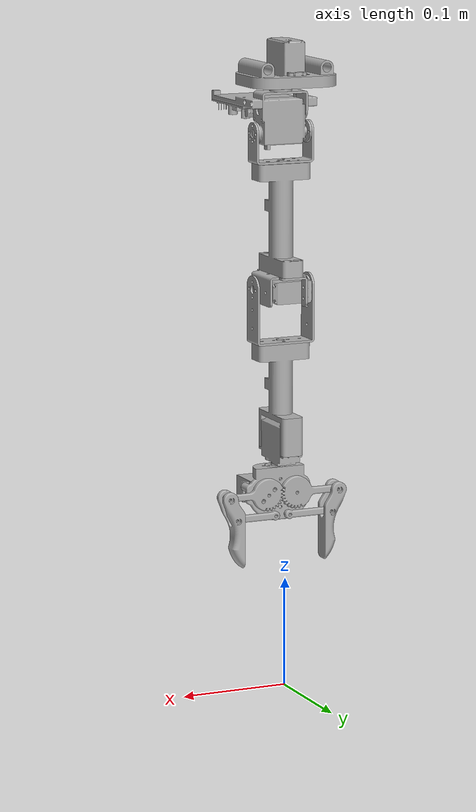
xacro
<?xml version="1.0"?>
<!-- assarm - URDF/xacro for ROS 2 Humble + Gazebo Harmonic (gz-sim) -->
<robot name="assarm" xmlns:xacro="http://www.ros.org/wiki/xacro">

<!-- ===== Tham so co the chinh ===== -->
<!-- Effort theo datasheet servo that (N.m) -->
<xacro:property name="effort_j1"      value="1.8"/>    <!-- TD8120MG (1.81-2.23 N.m) -->
<xacro:property name="effort_j2"      value="1.45"/>   <!-- RDS3120  (1.47-2.06 N.m) -->
<xacro:property name="effort_j3"      value="0.9"/>    <!-- MG995   (0.92-1.27 N.m) -->
<xacro:property name="effort_j4"      value="0.9"/>    <!-- MG995   (0.92-1.27 N.m) -->
<xacro:property name="gripper_effort" value="0.9"/>    <!-- MG995   (0.92-1.27 N.m) -->
<xacro:property name="joint_velocity" value="3.0"/>   <!-- rad/s -->
<xacro:property name="joint_damping"  value="0.1"/>
<xacro:property name="joint_friction" value="0.01"/>
<xacro:property name="base_z"    value="0.0"/>
<xacro:property name="base_roll" value="0.0"/>

<xacro:include filename="$(find assarm_description)/urdf/materials.xacro"/>
<xacro:include filename="$(find assarm_description)/urdf/assarm_ros2_control.xacro"/>
<xacro:include filename="$(find assarm_description)/urdf/assarm.gazebo"/>

<link name="world"/>
<joint name="world_to_base_joint" type="fixed">
  <parent link="world"/>
  <child link="base_link"/>
  <origin xyz="0 0 ${base_z}" rpy="${base_roll} 0 0"/>
</joint>

<link name="base_link">
  <inertial>
    <origin xyz="0 0 0.556779" rpy="0 0 0"/>
    <mass value="0.024005518761463195"/>
    <inertia ixx="1e-05" iyy="1.6e-05" izz="2.5e-05" ixy="0.0" iyz="0.0" ixz="-0.0"/>
  </inertial>
  <visual>
    <origin xyz="0 0 0" rpy="0 0 0"/>
    <geometry>
      <mesh filename="package://assarm_description/meshes/base_link.stl" scale="0.001 0.001 0.001"/>
    </geometry>
    <material name="silver"/>
  </visual>
  <collision>
    <origin xyz="0 0 0" rpy="0 0 0"/>
    <geometry>
      <mesh filename="package://assarm_description/meshes/base_link.stl" scale="0.001 0.001 0.001"/>
    </geometry>
  </collision>
</link>

<link name="Servo1_1">
  <inertial>
    <origin xyz="-0.0039 -0.024164 0.010047" rpy="0 0 0"/>
    <mass value="0.06403257509717535"/>
    <inertia ixx="1.7e-05" iyy="1e-05" izz="1.1e-05" ixy="0.0" iyz="-0.0" ixz="0.0"/>
  </inertial>
  <visual>
    <origin xyz="-0.003894 -0.02389 -0.56" rpy="0 0 0"/>
    <geometry>
      <mesh filename="package://assarm_description/meshes/Servo1_1.stl" scale="0.001 0.001 0.001"/>
    </geometry>
    <material name="silver"/>
  </visual>
  <collision>
    <origin xyz="-0.003894 -0.02389 -0.56" rpy="0 0 0"/>
    <geometry>
      <mesh filename="package://assarm_description/meshes/Servo1_1.stl" scale="0.001 0.001 0.001"/>
    </geometry>
  </collision>
</link>

<link name="Servo1_Pinion_Gear_1">
  <inertial>
    <origin xyz="0 0 -0.035921" rpy="0 0 0"/>
    <mass value="0.003"/>
    <inertia ixx="7.07e-08" iyy="7.07e-08" izz="1.36e-07" ixy="0.0" iyz="0.0" ixz="0.0"/>
  </inertial>
  <visual>
    <origin xyz="0.000006 0.010797 -0.580797" rpy="0 0 0"/>
    <geometry>
      <mesh filename="package://assarm_description/meshes/Servo1_Pinion_Gear_1.stl" scale="0.001 0.001 0.001"/>
    </geometry>
    <material name="silver"/>
  </visual>
  <collision>
    <origin xyz="0.000006 0.010797 -0.580797" rpy="0 0 0"/>
    <geometry>
      <mesh filename="package://assarm_description/meshes/Servo1_Pinion_Gear_1.stl" scale="0.001 0.001 0.001"/>
    </geometry>
  </collision>
</link>

<link name="Servo2_1">
  <inertial>
    <origin xyz="0.000473 -0.000041 -0.02579" rpy="0 0 0"/>
    <mass value="0.0800662347147613"/>
    <inertia ixx="1.5e-05" iyy="2.6e-05" izz="1.6e-05" ixy="-0.0" iyz="-0.0" ixz="0.0"/>
  </inertial>
  <visual>
    <origin xyz="0.000006 0.010797 -0.54355" rpy="0 0 0"/>
    <geometry>
      <mesh filename="package://assarm_description/meshes/Servo2_1.stl" scale="0.001 0.001 0.001"/>
    </geometry>
    <material name="silver"/>
  </visual>
  <collision>
    <origin xyz="0.000006 0.010797 -0.54355" rpy="0 0 0"/>
    <geometry>
      <mesh filename="package://assarm_description/meshes/Servo2_1.stl" scale="0.001 0.001 0.001"/>
    </geometry>
  </collision>
</link>

<link name="Servo2_BracketU_1">
  <inertial>
    <origin xyz="0.0258 0 -0.017356" rpy="0 0 0"/>
    <mass value="0.011032559217128033"/>
    <inertia ixx="2e-06" iyy="7e-06" izz="6e-06" ixy="0.0" iyz="-0.0" ixz="-0.0"/>
  </inertial>
  <visual>
    <origin xyz="0.026206 0.010797 -0.50653" rpy="0 0 0"/>
    <geometry>
      <mesh filename="package://assarm_description/meshes/Servo2_BracketU_1.stl" scale="0.001 0.001 0.001"/>
    </geometry>
    <material name="silver"/>
  </visual>
  <collision>
    <origin xyz="0.026206 0.010797 -0.50653" rpy="0 0 0"/>
    <geometry>
      <mesh filename="package://assarm_description/meshes/Servo2_BracketU_1.stl" scale="0.001 0.001 0.001"/>
    </geometry>
  </collision>
</link>

<link name="PCB_Box_1">
  <inertial>
    <origin xyz="-0.022374 -0.028321 -0.001439" rpy="0 0 0"/>
    <mass value="0.013008493921349134"/>
    <inertia ixx="9e-06" iyy="7e-06" izz="1.5e-05" ixy="0.0" iyz="-0.0" ixz="0.0"/>
  </inertial>
  <visual>
    <origin xyz="-0.022094 0.018222 -0.533975" rpy="0 0 0"/>
    <geometry>
      <mesh filename="package://assarm_description/meshes/PCB_Box_1.stl" scale="0.001 0.001 0.001"/>
    </geometry>
    <material name="silver"/>
  </visual>
  <collision>
    <origin xyz="-0.022094 0.018222 -0.533975" rpy="0 0 0"/>
    <geometry>
      <mesh filename="package://assarm_description/meshes/PCB_Box_1.stl" scale="0.001 0.001 0.001"/>
    </geometry>
  </collision>
</link>

<link name="PCB_1">
  <inertial>
    <origin xyz="0.029049 -0.028319 -0.002938" rpy="0 0 0"/>
    <mass value="0.03142086957249495"/>
    <inertia ixx="1.2e-05" iyy="1.1e-05" izz="2.2e-05" ixy="-0.0" iyz="0.0" ixz="0.0"/>
  </inertial>
  <visual>
    <origin xyz="0.028839 0.026298 -0.529325" rpy="0 0 0"/>
    <geometry>
      <mesh filename="package://assarm_description/meshes/PCB_1.stl" scale="0.001 0.001 0.001"/>
    </geometry>
    <material name="silver"/>
  </visual>
  <collision>
    <origin xyz="0.028839 0.026298 -0.529325" rpy="0 0 0"/>
    <geometry>
      <mesh filename="package://assarm_description/meshes/PCB_1.stl" scale="0.001 0.001 0.001"/>
    </geometry>
  </collision>
</link>

<link name="Link1_1">
  <inertial>
    <origin xyz="0 -0.000076 -0.049575" rpy="0 0 0"/>
    <mass value="0.024002440604215008"/>
    <inertia ixx="3e-05" iyy="3e-05" izz="4e-06" ixy="0.0" iyz="0.0" ixz="-0.0"/>
  </inertial>
  <visual>
    <origin xyz="0.000406 0.010797 -0.47953" rpy="0 0 0"/>
    <geometry>
      <mesh filename="package://assarm_description/meshes/Link1_1.stl" scale="0.001 0.001 0.001"/>
    </geometry>
    <material name="silver"/>
  </visual>
  <collision>
    <origin xyz="0.000406 0.010797 -0.47953" rpy="0 0 0"/>
    <geometry>
      <mesh filename="package://assarm_description/meshes/Link1_1.stl" scale="0.001 0.001 0.001"/>
    </geometry>
  </collision>
</link>

<link name="Servo3_BracketM_1">
  <inertial>
    <origin xyz="0.010182 -0.024982 -0.007355" rpy="0 0 0"/>
    <mass value="0.017000185456280625"/>
    <inertia ixx="6e-06" iyy="4e-06" izz="7e-06" ixy="0.0" iyz="0.0" ixz="1e-06"/>
  </inertial>
  <visual>
    <origin xyz="0.005406 -0.01419 -0.37953" rpy="0 0 0"/>
    <geometry>
      <mesh filename="package://assarm_description/meshes/Servo3_BracketM_1.stl" scale="0.001 0.001 0.001"/>
    </geometry>
    <material name="silver"/>
  </visual>
  <collision>
    <origin xyz="0.005406 -0.01419 -0.37953" rpy="0 0 0"/>
    <geometry>
      <mesh filename="package://assarm_description/meshes/Servo3_BracketM_1.stl" scale="0.001 0.001 0.001"/>
    </geometry>
  </collision>
</link>

<link name="Servo3_1">
  <inertial>
    <origin xyz="0.008485 -0.024315 -0.004982" rpy="0 0 0"/>
    <mass value="0.053059879208595145"/>
    <inertia ixx="9e-06" iyy="8e-06" izz="1.4e-05" ixy="-0.0" iyz="0.0" ixz="0.0"/>
  </inertial>
  <visual>
    <origin xyz="0.013406 -0.01344 -0.36966" rpy="0 0 0"/>
    <geometry>
      <mesh filename="package://assarm_description/meshes/Servo3_1.stl" scale="0.001 0.001 0.001"/>
    </geometry>
    <material name="silver"/>
  </visual>
  <collision>
    <origin xyz="0.013406 -0.01344 -0.36966" rpy="0 0 0"/>
    <geometry>
      <mesh filename="package://assarm_description/meshes/Servo3_1.stl" scale="0.001 0.001 0.001"/>
    </geometry>
  </collision>
</link>

<link name="Servo3_Pinion_Gear_1">
  <inertial>
    <origin xyz="-0.000674 0 0" rpy="0 0 0"/>
    <mass value="0.003"/>
    <inertia ixx="7.07e-08" iyy="7.07e-08" izz="1.36e-07" ixy="0.0" iyz="0.0" ixz="0.0"/>
  </inertial>
  <visual>
    <origin xyz="0.028906 0.02071 -0.36466" rpy="0 0 0"/>
    <geometry>
      <mesh filename="package://assarm_description/meshes/Servo3_Pinion_Gear_1.stl" scale="0.001 0.001 0.001"/>
    </geometry>
    <material name="silver"/>
  </visual>
  <collision>
    <origin xyz="0.028906 0.02071 -0.36466" rpy="0 0 0"/>
    <geometry>
      <mesh filename="package://assarm_description/meshes/Servo3_Pinion_Gear_1.stl" scale="0.001 0.001 0.001"/>
    </geometry>
  </collision>
</link>

<link name="Servo3_BracketU_1">
  <inertial>
    <origin xyz="0.026 0 -0.029125" rpy="0 0 0"/>
    <mass value="0.02300359200204669"/>
    <inertia ixx="1e-05" iyy="2.2e-05" izz="1.4e-05" ixy="-0.0" iyz="-0.0" ixz="-0.0"/>
  </inertial>
  <visual>
    <origin xyz="0.030906 0.02071 -0.36466" rpy="0 0 0"/>
    <geometry>
      <mesh filename="package://assarm_description/meshes/Servo3_BracketU_1.stl" scale="0.001 0.001 0.001"/>
    </geometry>
    <material name="silver"/>
  </visual>
  <collision>
    <origin xyz="0.030906 0.02071 -0.36466" rpy="0 0 0"/>
    <geometry>
      <mesh filename="package://assarm_description/meshes/Servo3_BracketU_1.stl" scale="0.001 0.001 0.001"/>
    </geometry>
  </collision>
</link>

<link name="Link2_1">
  <inertial>
    <origin xyz="0 0.000109 -0.04004" rpy="0 0 0"/>
    <mass value="0.024078102548611983"/>
    <inertia ixx="2.5e-05" iyy="2.3e-05" izz="6e-06" ixy="0.0" iyz="0.0" ixz="-0.0"/>
  </inertial>
  <visual>
    <origin xyz="0.004906 0.02071 -0.31466" rpy="0 0 0"/>
    <geometry>
      <mesh filename="package://assarm_description/meshes/Link2_1.stl" scale="0.001 0.001 0.001"/>
    </geometry>
    <material name="silver"/>
  </visual>
  <collision>
    <origin xyz="0.004906 0.02071 -0.31466" rpy="0 0 0"/>
    <geometry>
      <mesh filename="package://assarm_description/meshes/Link2_1.stl" scale="0.001 0.001 0.001"/>
    </geometry>
  </collision>
</link>

<link name="Servo4_1">
  <inertial>
    <origin xyz="0.004982 -0.024315 0.008485" rpy="0 0 0"/>
    <mass value="0.053059879208595145"/>
    <inertia ixx="1.4e-05" iyy="8e-06" izz="9e-06" ixy="-0.0" iyz="-0.0" ixz="-0.0"/>
  </inertial>
  <visual>
    <origin xyz="0.009906 -0.00344 -0.21466" rpy="0 0 0"/>
    <geometry>
      <mesh filename="package://assarm_description/meshes/Servo4_1.stl" scale="0.001 0.001 0.001"/>
    </geometry>
    <material name="silver"/>
  </visual>
  <collision>
    <origin xyz="0.009906 -0.00344 -0.21466" rpy="0 0 0"/>
    <geometry>
      <mesh filename="package://assarm_description/meshes/Servo4_1.stl" scale="0.001 0.001 0.001"/>
    </geometry>
  </collision>
</link>

<link name="Servo4_Pinion_Gear_1">
  <inertial>
    <origin xyz="0 0 -0.000674" rpy="0 0 0"/>
    <mass value="0.003"/>
    <inertia ixx="7.07e-08" iyy="7.07e-08" izz="1.36e-07" ixy="0.0" iyz="0.0" ixz="0.0"/>
  </inertial>
  <visual>
    <origin xyz="0.004906 0.03071 -0.19916" rpy="0 0 0"/>
    <geometry>
      <mesh filename="package://assarm_description/meshes/Servo4_Pinion_Gear_1.stl" scale="0.001 0.001 0.001"/>
    </geometry>
    <material name="silver"/>
  </visual>
  <collision>
    <origin xyz="0.004906 0.03071 -0.19916" rpy="0 0 0"/>
    <geometry>
      <mesh filename="package://assarm_description/meshes/Servo4_Pinion_Gear_1.stl" scale="0.001 0.001 0.001"/>
    </geometry>
  </collision>
</link>

<link name="Plate_1">
  <inertial>
    <origin xyz="-0.00074 0.004984 -0.017062" rpy="0 0 0"/>
    <mass value="0.011995923479278468"/>
    <inertia ixx="3e-06" iyy="6e-06" izz="4e-06" ixy="0.0" iyz="0.0" ixz="-0.0"/>
  </inertial>
  <visual>
    <origin xyz="0.004906 0.03071 -0.19716" rpy="0 0 0"/>
    <geometry>
      <mesh filename="package://assarm_description/meshes/Plate_1.stl" scale="0.001 0.001 0.001"/>
    </geometry>
    <material name="silver"/>
  </visual>
  <collision>
    <origin xyz="0.004906 0.03071 -0.19716" rpy="0 0 0"/>
    <geometry>
      <mesh filename="package://assarm_description/meshes/Plate_1.stl" scale="0.001 0.001 0.001"/>
    </geometry>
  </collision>
</link>

<link name="Servo5_1">
  <inertial>
    <origin xyz="0.025072 -0.052246 0.200142" rpy="0 0 0"/>
    <mass value="0.053059879208595145"/>
    <inertia ixx="8e-06" iyy="9e-06" izz="1.4e-05" ixy="-0.0" iyz="0.0" ixz="0.0"/>
  </inertial>
  <visual>
    <origin xyz="0.025812 -0.005 0.025" rpy="0 0 0"/>
    <geometry>
      <mesh filename="package://assarm_description/meshes/Servo5_1.stl" scale="0.001 0.001 0.001"/>
    </geometry>
    <material name="silver"/>
  </visual>
  <collision>
    <origin xyz="0.025812 -0.005 0.025" rpy="0 0 0"/>
    <geometry>
      <mesh filename="package://assarm_description/meshes/Servo5_1.stl" scale="0.001 0.001 0.001"/>
    </geometry>
  </collision>
</link>

<link name="Servo5_Pinion_Gear_1">
  <inertial>
    <origin xyz="0 0.068479 0" rpy="0 0 0"/>
    <mass value="0.003"/>
    <inertia ixx="7.07e-08" iyy="7.07e-08" izz="1.36e-07" ixy="0.0" iyz="0.0" ixz="0.0"/>
  </inertial>
  <visual>
    <origin xyz="-0.009094 0.090015 -0.17516" rpy="0 0 0"/>
    <geometry>
      <mesh filename="package://assarm_description/meshes/Servo5_Pinion_Gear_1.stl" scale="0.001 0.001 0.001"/>
    </geometry>
    <material name="silver"/>
  </visual>
  <collision>
    <origin xyz="-0.009094 0.090015 -0.17516" rpy="0 0 0"/>
    <geometry>
      <mesh filename="package://assarm_description/meshes/Servo5_Pinion_Gear_1.stl" scale="0.001 0.001 0.001"/>
    </geometry>
  </collision>
</link>

<link name="Servo_Gear_1">
  <inertial>
    <origin xyz="0.006595 0.003 0.000395" rpy="0 0 0"/>
    <mass value="0.002998793120495797"/>
    <inertia ixx="1e-06" iyy="1e-06" izz="1e-06" ixy="0.0" iyz="0.0" ixz="0.0"/>
  </inertial>
  <visual>
    <origin xyz="-0.009094 0.02021 -0.17516" rpy="0 0 0"/>
    <geometry>
      <mesh filename="package://assarm_description/meshes/Servo_Gear_1.stl" scale="0.001 0.001 0.001"/>
    </geometry>
    <material name="silver"/>
  </visual>
  <collision>
    <origin xyz="-0.009094 0.02021 -0.17516" rpy="0 0 0"/>
    <geometry>
      <mesh filename="package://assarm_description/meshes/Servo_Gear_1.stl" scale="0.001 0.001 0.001"/>
    </geometry>
  </collision>
</link>

<link name="Idol_Gear_1">
  <inertial>
    <origin xyz="-0.006453 0.003 0.000407" rpy="0 0 0"/>
    <mass value="0.0029970567767714884"/>
    <inertia ixx="1e-06" iyy="1e-06" izz="1e-06" ixy="0.0" iyz="0.0" ixz="0.0"/>
  </inertial>
  <visual>
    <origin xyz="0.018906 0.02021 -0.17516" rpy="0 0 0"/>
    <geometry>
      <mesh filename="package://assarm_description/meshes/Idol_Gear_1.stl" scale="0.001 0.001 0.001"/>
    </geometry>
    <material name="silver"/>
  </visual>
  <collision>
    <origin xyz="0.018906 0.02021 -0.17516" rpy="0 0 0"/>
    <geometry>
      <mesh filename="package://assarm_description/meshes/Idol_Gear_1.stl" scale="0.001 0.001 0.001"/>
    </geometry>
  </collision>
</link>

<link name="Gripper_Left_1">
  <inertial>
    <origin xyz="0.007006 0.003247 -0.028309" rpy="0 0 0"/>
    <mass value="0.005999452648441966"/>
    <inertia ixx="2e-06" iyy="2e-06" izz="1e-06" ixy="0.0" iyz="0.0" ixz="0.0"/>
  </inertial>
  <visual>
    <origin xyz="0.058906 0.02021 -0.17516" rpy="0 0 0"/>
    <geometry>
      <mesh filename="package://assarm_description/meshes/Gripper_Left_1.stl" scale="0.001 0.001 0.001"/>
    </geometry>
    <material name="silver"/>
  </visual>
  <collision>
    <origin xyz="0.058906 0.02021 -0.17516" rpy="0 0 0"/>
    <geometry>
      <mesh filename="package://assarm_description/meshes/Gripper_Left_1.stl" scale="0.001 0.001 0.001"/>
    </geometry>
  </collision>
</link>

<link name="Gripper_Right_1">
  <inertial>
    <origin xyz="-0.007006 0.003247 -0.028308" rpy="0 0 0"/>
    <mass value="0.005999453345727804"/>
    <inertia ixx="2e-06" iyy="2e-06" izz="1e-06" ixy="0.0" iyz="0.0" ixz="0.0"/>
  </inertial>
  <visual>
    <origin xyz="-0.049094 0.02021 -0.175159" rpy="0 0 0"/>
    <geometry>
      <mesh filename="package://assarm_description/meshes/Gripper_Right_1.stl" scale="0.001 0.001 0.001"/>
    </geometry>
    <material name="silver"/>
  </visual>
  <collision>
    <origin xyz="-0.049094 0.02021 -0.175159" rpy="0 0 0"/>
    <geometry>
      <mesh filename="package://assarm_description/meshes/Gripper_Right_1.stl" scale="0.001 0.001 0.001"/>
    </geometry>
  </collision>
</link>

<link name="Pivot_Arm_Left_1">
  <inertial>
    <origin xyz="-0.018960 0.003000 0.000075" rpy="0 0 0"/>
    <mass value="0.001963"/>
    <inertia ixx="1e-06" iyy="1e-06" izz="1e-06" ixy="0.0" iyz="0.0" ixz="0.0"/>
  </inertial>
  <visual>
    <origin xyz="0.012947 0.020210 -0.155084" rpy="0 0 0"/>
    <geometry>
      <mesh filename="package://assarm_description/meshes/Pivot_Arm_Left_1.stl" scale="0.001 0.001 0.001"/>
    </geometry>
    <material name="silver"/>
  </visual>
  <collision>
    <origin xyz="0.012947 0.020210 -0.155084" rpy="0 0 0"/>
    <geometry>
      <mesh filename="package://assarm_description/meshes/Pivot_Arm_Left_1.stl" scale="0.001 0.001 0.001"/>
    </geometry>
  </collision>
</link>

<link name="Pivot_Arm_Right_1">
  <inertial>
    <origin xyz="0.018959 0.003000 0.000076" rpy="0 0 0"/>
    <mass value="0.001963"/>
    <inertia ixx="1e-06" iyy="1e-06" izz="1e-06" ixy="0.0" iyz="0.0" ixz="0.0"/>
  </inertial>
  <visual>
    <origin xyz="-0.003135 0.020210 -0.155084" rpy="0 0 0"/>
    <geometry>
      <mesh filename="package://assarm_description/meshes/Pivot_Arm_Right_1.stl" scale="0.001 0.001 0.001"/>
    </geometry>
    <material name="silver"/>
  </visual>
  <collision>
    <origin xyz="-0.003135 0.020210 -0.155084" rpy="0 0 0"/>
    <geometry>
      <mesh filename="package://assarm_description/meshes/Pivot_Arm_Right_1.stl" scale="0.001 0.001 0.001"/>
    </geometry>
  </collision>
</link>

<joint name="Rigid_1" type="fixed">
  <origin xyz="0.003894 0.02389 0.56" rpy="0 0 0"/>
  <parent link="base_link"/>
  <child link="Servo1_1"/>
</joint>

<joint name="Revolute_Joint_1" type="revolute">
  <origin xyz="-0.0039 -0.034687 0.020797" rpy="0 0 0"/>
  <parent link="Servo1_1"/>
  <child link="Servo1_Pinion_Gear_1"/>
  <axis xyz="0.0 0.0 -1.0"/>
  <limit lower="-1.570796" upper="1.570796" effort="${effort_j1}" velocity="${joint_velocity}"/>
  <dynamics damping="${joint_damping}" friction="${joint_friction}"/>
</joint>

<joint name="Rigid_2" type="fixed">
  <origin xyz="0 0 -0.037247" rpy="0 0 0"/>
  <parent link="Servo1_Pinion_Gear_1"/>
  <child link="Servo2_1"/>
</joint>

<joint name="Revolute_Joint_2" type="revolute">
  <origin xyz="-0.0262 0 -0.03702" rpy="0 0 0"/>
  <parent link="Servo2_1"/>
  <child link="Servo2_BracketU_1"/>
  <axis xyz="-1.0 -0.0 0.0"/>
  <limit lower="-1.570796" upper="1.570796" effort="${effort_j2}" velocity="${joint_velocity}"/>
  <dynamics damping="${joint_damping}" friction="${joint_friction}"/>
</joint>

<joint name="Rigid_3" type="fixed">
  <origin xyz="0.0221 -0.007425 -0.009575" rpy="0 0 0"/>
  <parent link="Servo2_1"/>
  <child link="PCB_Box_1"/>
</joint>

<joint name="Rigid_4" type="fixed">
  <origin xyz="-0.050933 -0.008076 -0.00465" rpy="0 0 0"/>
  <parent link="PCB_Box_1"/>
  <child link="PCB_1"/>
</joint>

<joint name="Rigid_5" type="fixed">
  <origin xyz="0.0258 0 -0.027" rpy="0 0 0"/>
  <parent link="Servo2_BracketU_1"/>
  <child link="Link1_1"/>
</joint>

<joint name="Rigid_6" type="fixed">
  <origin xyz="-0.005 0.024987 -0.1" rpy="0 0 0"/>
  <parent link="Link1_1"/>
  <child link="Servo3_BracketM_1"/>
</joint>

<joint name="Rigid_7" type="fixed">
  <origin xyz="-0.008 -0.00075 -0.00987" rpy="0 0 0"/>
  <parent link="Servo3_BracketM_1"/>
  <child link="Servo3_1"/>
</joint>

<joint name="Revolute_Joint_3" type="revolute">
  <origin xyz="-0.0155 -0.03415 -0.005" rpy="0 0 0"/>
  <parent link="Servo3_1"/>
  <child link="Servo3_Pinion_Gear_1"/>
  <axis xyz="-1.0 -0.0 -0.0"/>
  <limit lower="-1.570796" upper="1.570796" effort="${effort_j3}" velocity="${joint_velocity}"/>
  <dynamics damping="${joint_damping}" friction="${joint_friction}"/>
</joint>

<joint name="Rigid_8" type="fixed">
  <origin xyz="-0.002 0 0" rpy="0 0 0"/>
  <parent link="Servo3_Pinion_Gear_1"/>
  <child link="Servo3_BracketU_1"/>
</joint>

<joint name="Rigid_9" type="fixed">
  <origin xyz="0.026 0 -0.05" rpy="0 0 0"/>
  <parent link="Servo3_BracketU_1"/>
  <child link="Link2_1"/>
</joint>

<joint name="Rigid_10" type="fixed">
  <origin xyz="-0.005 0.02415 -0.1" rpy="0 0 0"/>
  <parent link="Link2_1"/>
  <child link="Servo4_1"/>
</joint>

<joint name="Revolute_Joint_4" type="revolute">
  <origin xyz="0.005 -0.03415 -0.0155" rpy="0 0 0"/>
  <parent link="Servo4_1"/>
  <child link="Servo4_Pinion_Gear_1"/>
  <axis xyz="0.0 0.0 -1.0"/>
  <limit lower="-1.570796" upper="1.570796" effort="${effort_j4}" velocity="${joint_velocity}"/>
  <dynamics damping="${joint_damping}" friction="${joint_friction}"/>
</joint>

<joint name="Rigid_11" type="fixed">
  <origin xyz="0 0 -0.002" rpy="0 0 0"/>
  <parent link="Servo4_Pinion_Gear_1"/>
  <child link="Plate_1"/>
</joint>

<joint name="Rigid_12" type="fixed">
  <origin xyz="-0.020906 0.03571 -0.22216" rpy="0 0 0"/>
  <parent link="Plate_1"/>
  <child link="Servo5_1"/>
</joint>

<joint name="Revolute_Joint_Active" type="revolute">
  <origin xyz="0.034906 -0.095015 0.20016" rpy="0 0 0"/>
  <parent link="Servo5_1"/>
  <child link="Servo5_Pinion_Gear_1"/>
  <axis xyz="-0.0 1.0 0.0"/>
  <limit lower="0.0" upper="1.570796" effort="${gripper_effort}" velocity="${joint_velocity}"/>
  <dynamics damping="${joint_damping}" friction="${joint_friction}"/>
</joint>

<joint name="Rigid_13" type="fixed">
  <origin xyz="0 0.069805 0" rpy="0 0 0"/>
  <parent link="Servo5_Pinion_Gear_1"/>
  <child link="Servo_Gear_1"/>
</joint>

<joint name="Revolute_Joint_Passive" type="revolute">
  <origin xyz="-0.014 0.0105 -0.022" rpy="0 0 0"/>
  <parent link="Plate_1"/>
  <child link="Idol_Gear_1"/>
  <axis xyz="0.0 1.0 0.0"/>
  <limit lower="-1.570796" upper="0.0" effort="${gripper_effort}" velocity="${joint_velocity}"/>
  <dynamics damping="${joint_damping}" friction="${joint_friction}"/>
  <mimic joint="Revolute_Joint_Active" multiplier="-1.0" offset="0.0"/>
</joint>

<joint name="Revolute_Joint_5" type="revolute">
  <origin xyz="-0.04 0 0" rpy="0 0 0"/>
  <parent link="Idol_Gear_1"/>
  <child link="Gripper_Left_1"/>
  <axis xyz="0.0 1.0 0.0"/>
  <limit lower="0.0" upper="1.570796" effort="${gripper_effort}" velocity="${joint_velocity}"/>
  <dynamics damping="${joint_damping}" friction="${joint_friction}"/>
  <mimic joint="Revolute_Joint_Active" multiplier="1.0" offset="0.0"/>
</joint>

<joint name="Revolute_Joint_8" type="revolute">
  <origin xyz="0.04 0 -0.000001" rpy="0 0 0"/>
  <parent link="Servo_Gear_1"/>
  <child link="Gripper_Right_1"/>
  <axis xyz="0.0 1.0 0.0"/>
  <limit lower="-1.570796" upper="0.0" effort="${gripper_effort}" velocity="${joint_velocity}"/>
  <dynamics damping="${joint_damping}" friction="${joint_friction}"/>
  <mimic joint="Revolute_Joint_Active" multiplier="-1.0" offset="0.0"/>
</joint>

<joint name="Revolute_Joint_Pivot_Left" type="revolute">
  <origin xyz="-0.008041 0.010500 -0.042076" rpy="0 0 0"/>
  <parent link="Plate_1"/>
  <child link="Pivot_Arm_Left_1"/>
  <axis xyz="0.0 1.0 0.0"/>
  <limit lower="-1.570796" upper="0.0" effort="${gripper_effort}" velocity="${joint_velocity}"/>
  <dynamics damping="${joint_damping}" friction="${joint_friction}"/>
  <mimic joint="Revolute_Joint_Active" multiplier="-1.0" offset="0.0"/>
</joint>

<joint name="Revolute_Joint_Pivot_Right" type="revolute">
  <origin xyz="0.008041 0.010500 -0.042076" rpy="0 0 0"/>
  <parent link="Plate_1"/>
  <child link="Pivot_Arm_Right_1"/>
  <axis xyz="0.0 1.0 0.0"/>
  <limit lower="0.0" upper="1.570796" effort="${gripper_effort}" velocity="${joint_velocity}"/>
  <dynamics damping="${joint_damping}" friction="${joint_friction}"/>
  <mimic joint="Revolute_Joint_Active" multiplier="1.0" offset="0.0"/>
</joint>

</robot>

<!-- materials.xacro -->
<robot name="assarm" xmlns:xacro="http://www.ros.org/wiki/xacro" >

<material name="silver">
  <color rgba="0.700 0.700 0.700 1.000"/>
</material>

</robot>
